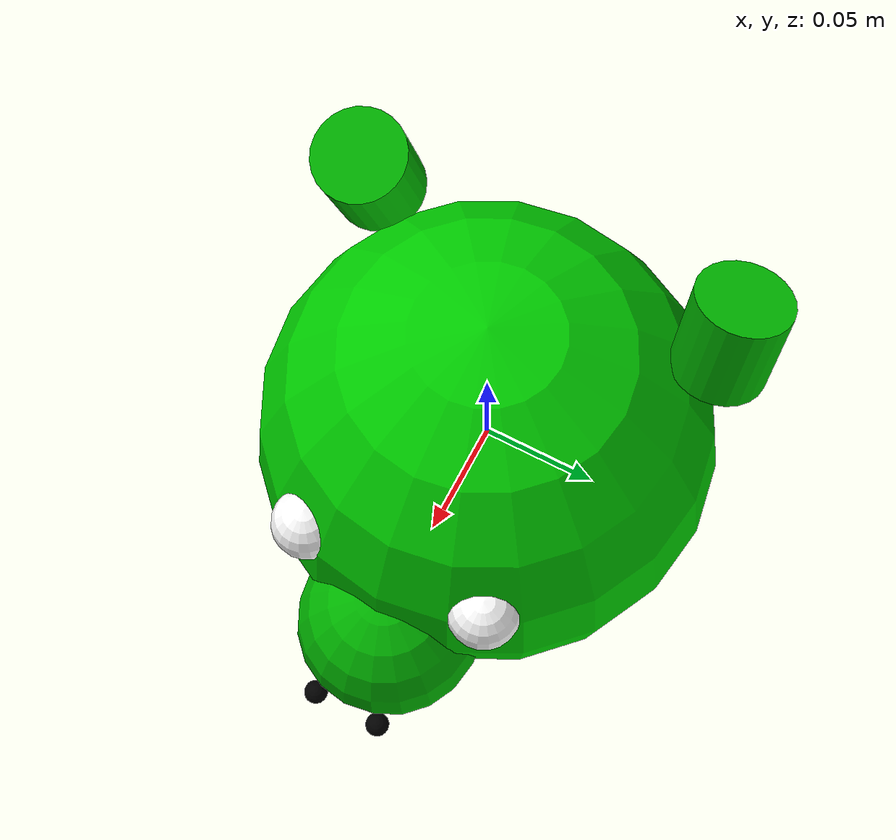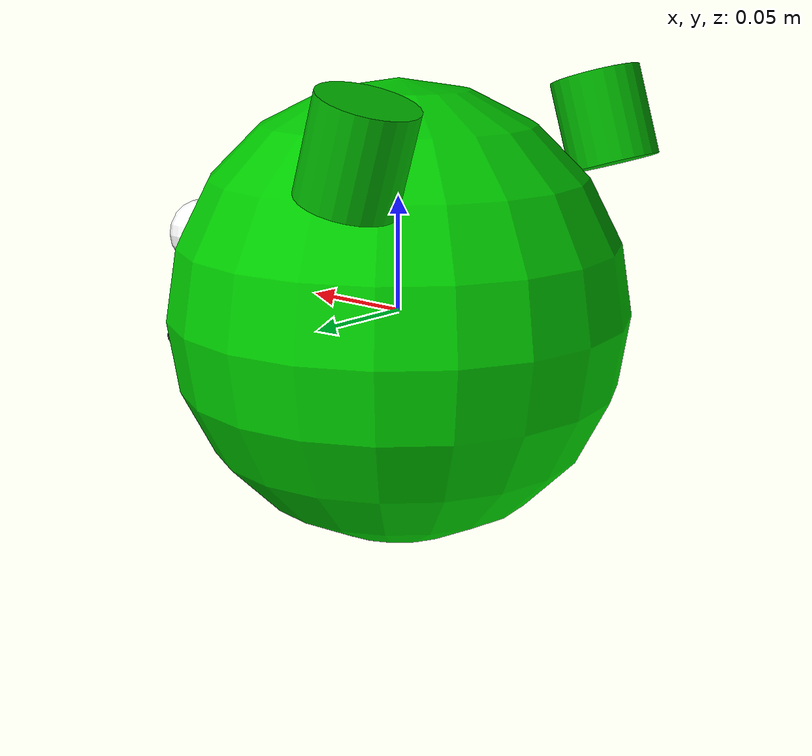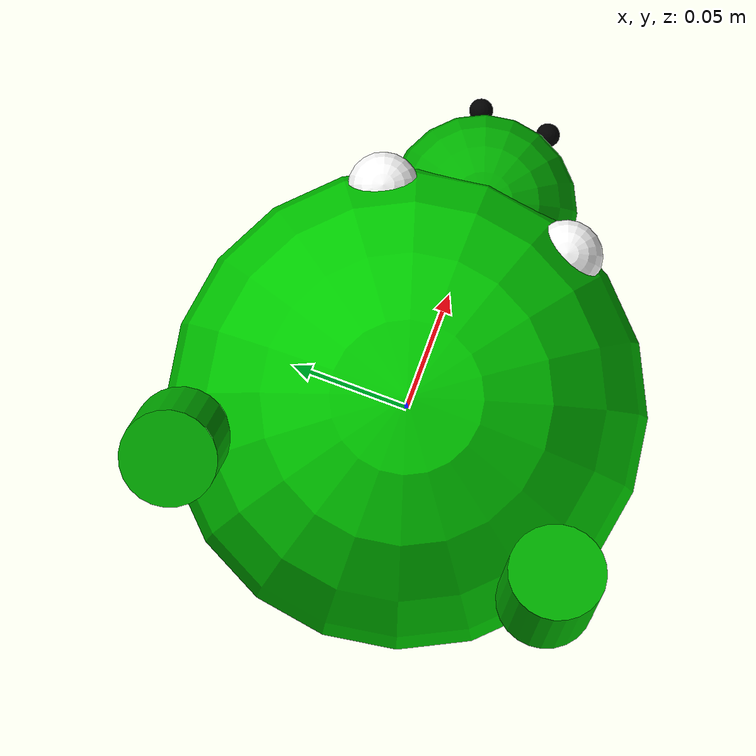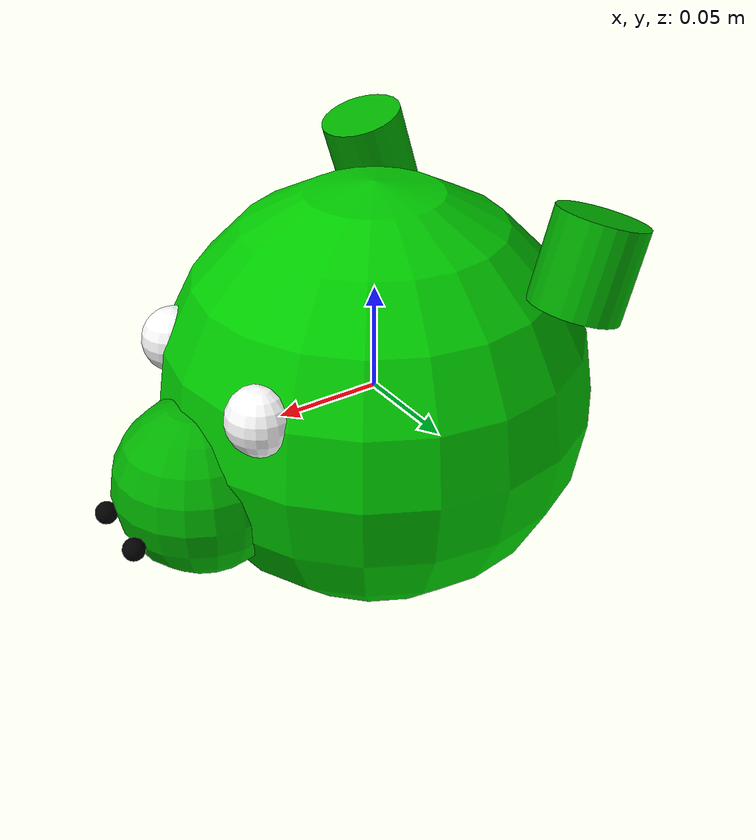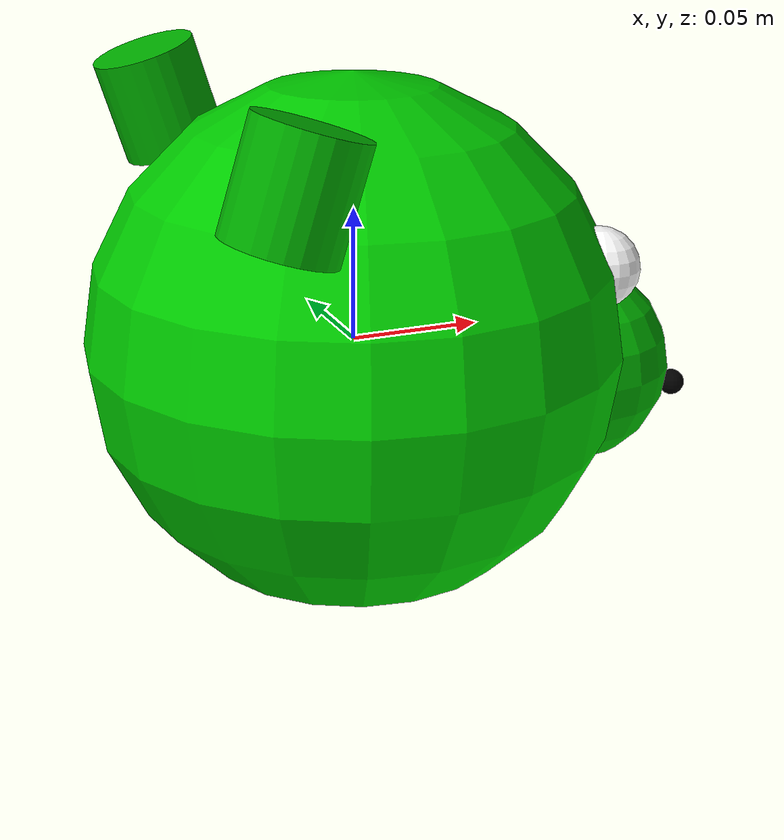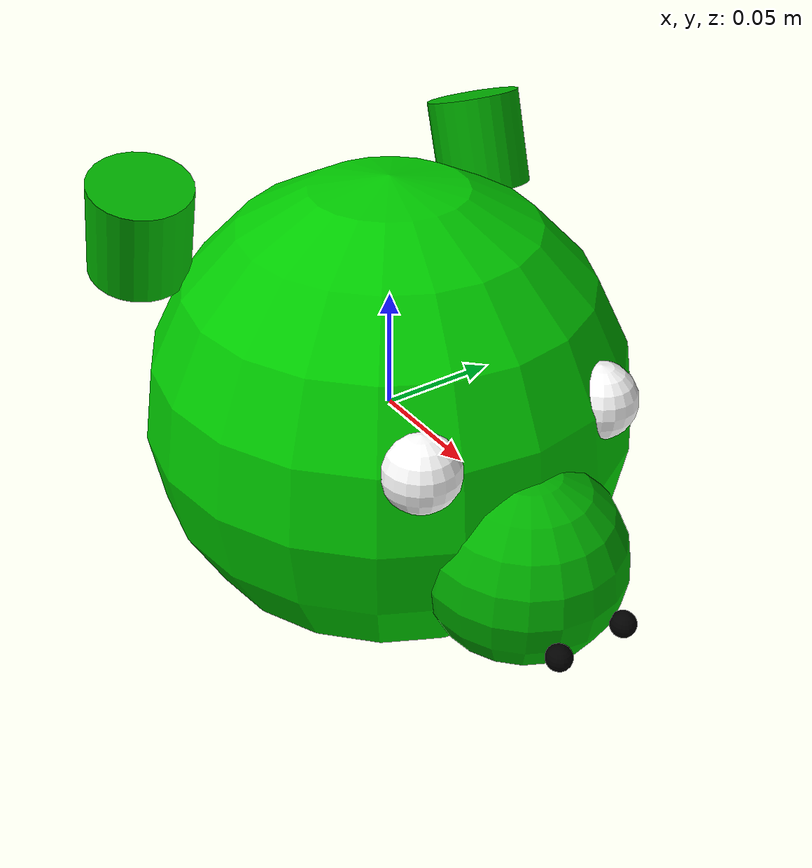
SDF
<?xml version="1.0"?>
<sdf version="1.6">
  <model name="angry_birds_pig">
    <link name="pig_body">
      <inertial>
        <mass>0.35</mass>
        <inertia>
          <ixx>0.1</ixx>
          <ixy>0</ixy>
          <ixz>0</ixz>
          <iyy>0.1</iyy>
          <iyz>0</iyz>
          <izz>0.1</izz>
        </inertia>
      </inertial>

      <!-- Main body (sphere) -->
      <visual name="body_visual">
        <geometry>
          <sphere>
            <radius>0.1</radius>
          </sphere>
        </geometry>
        <material>
          <ambient>0 0.8 0 1</ambient>
          <diffuse>0 0.8 0 1</diffuse>
          <specular>0.1 0.1 0.1 1</specular>
        </material>
      </visual>
      <collision name="body_collision">
        <geometry>
          <sphere>
            <radius>0.1</radius>
          </sphere>
        </geometry>
      </collision>

      <!-- Snout (smaller sphere) -->
      <visual name="snout_visual">
        <pose>0.09 0 -0.02 0 0 0</pose>
        <geometry>
          <sphere>
            <radius>0.04</radius>
          </sphere>
        </geometry>
        <material>
          <ambient>0 0.7 0 1</ambient>
          <diffuse>0 0.7 0 1</diffuse>
          <specular>0.1 0.1 0.1 1</specular>
        </material>
      </visual>
      <collision name="snout_collision">
        <pose>0.09 0 -0.02 0 0 0</pose>
        <geometry>
          <sphere>
            <radius>0.04</radius>
          </sphere>
        </geometry>
      </collision>

      <!-- Left ear (cylinder) -->
      <visual name="left_ear_visual">
        <pose>-0.05 0.08 0.08 0 -0.3 0</pose>
        <geometry>
          <cylinder>
            <radius>0.02</radius>
            <length>0.04</length>
          </cylinder>
        </geometry>
        <material>
          <ambient>0 0.7 0 1</ambient>
          <diffuse>0 0.7 0 1</diffuse>
          <specular>0.1 0.1 0.1 1</specular>
        </material>
      </visual>
      <collision name="left_ear_collision">
        <pose>-0.05 0.08 0.08 0 -0.3 0</pose>
        <geometry>
          <cylinder>
            <radius>0.02</radius>
            <length>0.04</length>
          </cylinder>
        </geometry>
      </collision>

      <!-- Right ear (cylinder) -->
      <visual name="right_ear_visual">
        <pose>-0.05 -0.08 0.08 0 0.3 0</pose>
        <geometry>
          <cylinder>
            <radius>0.02</radius>
            <length>0.04</length>
          </cylinder>
        </geometry>
        <material>
          <ambient>0 0.7 0 1</ambient>
          <diffuse>0 0.7 0 1</diffuse>
          <specular>0.1 0.1 0.1 1</specular>
        </material>
      </visual>
      <collision name="right_ear_collision">
        <pose>-0.05 -0.08 0.08 0 0.3 0</pose>
        <geometry>
          <cylinder>
            <radius>0.02</radius>
            <length>0.04</length>
          </cylinder>
        </geometry>
      </collision>

      <!-- Left eye (small sphere) -->
      <visual name="left_eye_visual">
        <pose>0.08 0.04 0.03 0 0 0</pose>
        <geometry>
          <sphere>
            <radius>0.015</radius>
          </sphere>
        </geometry>
        <material>
          <ambient>1 1 1 1</ambient>
          <diffuse>1 1 1 1</diffuse>
          <specular>0.1 0.1 0.1 1</specular>
        </material>
      </visual>

      <!-- Right eye (small sphere) -->
      <visual name="right_eye_visual">
        <pose>0.08 -0.04 0.03 0 0 0</pose>
        <geometry>
          <sphere>
            <radius>0.015</radius>
          </sphere>
        </geometry>
        <material>
          <ambient>1 1 1 1</ambient>
          <diffuse>1 1 1 1</diffuse>
          <specular>0.1 0.1 0.1 1</specular>
        </material>
      </visual>

      <!-- Left nostril (tiny sphere) -->
      <visual name="left_nostril_visual">
        <pose>0.13 0.015 -0.03 0 0 0</pose>
        <geometry>
          <sphere>
            <radius>0.005</radius>
          </sphere>
        </geometry>
        <material>
          <ambient>0 0 0 1</ambient>
          <diffuse>0 0 0 1</diffuse>
          <specular>0.1 0.1 0.1 1</specular>
        </material>
      </visual>

      <!-- Right nostril (tiny sphere) -->
      <visual name="right_nostril_visual">
        <pose>0.13 -0.015 -0.03 0 0 0</pose>
        <geometry>
          <sphere>
            <radius>0.005</radius>
          </sphere>
        </geometry>
        <material>
          <ambient>0 0 0 1</ambient>
          <diffuse>0 0 0 1</diffuse>
          <specular>0.1 0.1 0.1 1</specular>
        </material>
      </visual>
    </link>
  </model>
</sdf>
